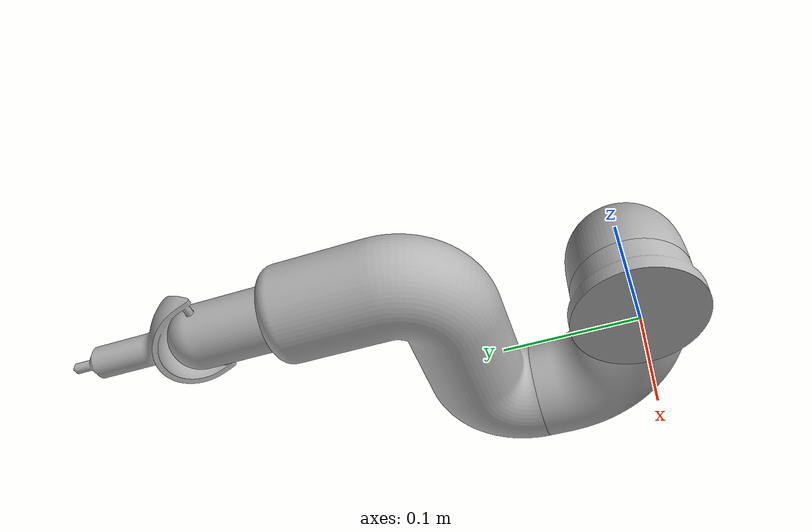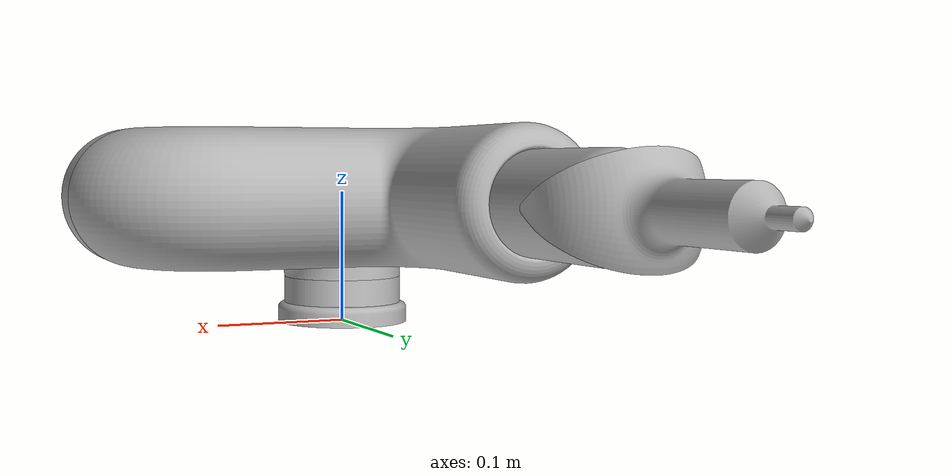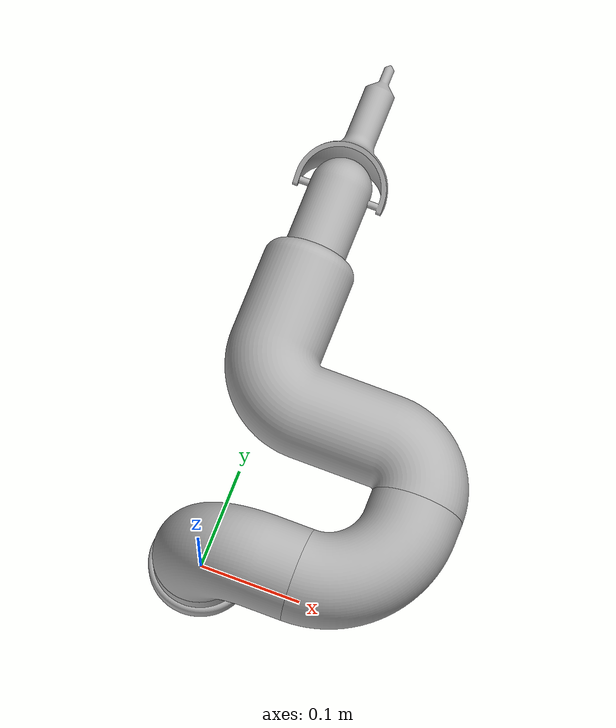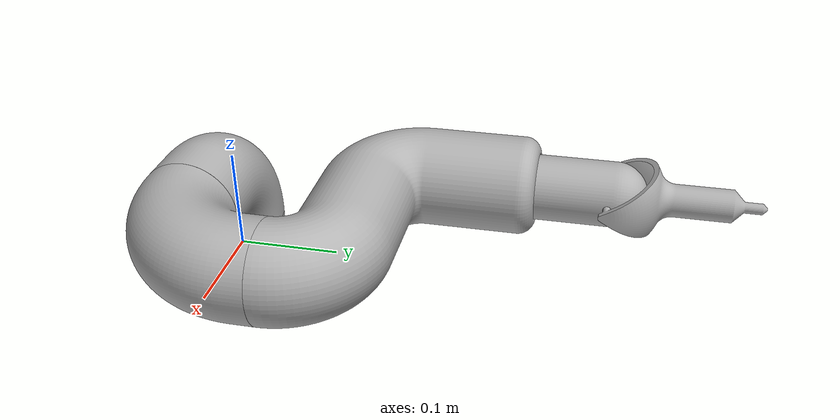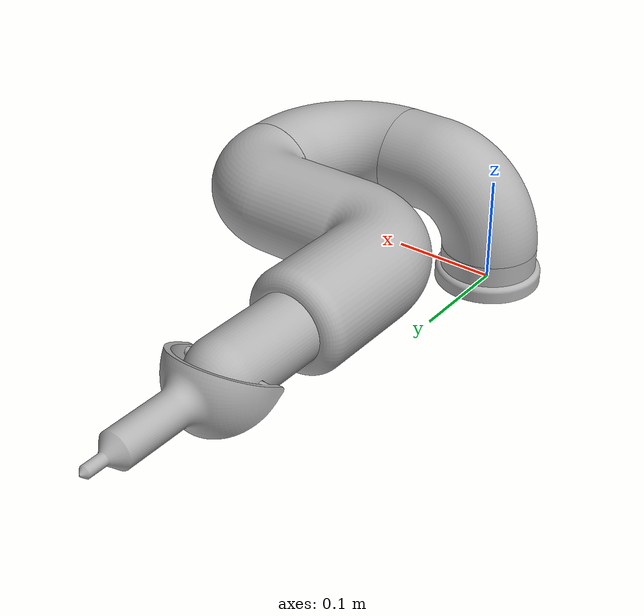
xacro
<?xml version="1.0" ?>
<robot name="Braco" xmlns:xacro="http://www.ros.org/wiki/xacro">

<xacro:include filename="$(find braco_description)/urdf/materials.xacro" />
<xacro:include filename="$(find braco_description)/urdf/Braço.trans" />
<xacro:include filename="$(find braco_description)/urdf/Braço.gazebo" />

<link name="world"/>

<joint name="world_to_base" type="fixed">
  <origin xyz="0 0 0" rpy="0 0 0"/>
  <parent link="world"/>
  <child link="base_link"/>
</joint>

<link name="base_link">
  <inertial>
    <origin xyz="0.0 9.341702626166154e-18 0.016604912357786914" rpy="0 0 0"/>
    <mass value="1.910661710885449"/>
    <inertia ixx="0.001266" iyy="0.001266" izz="0.002136" ixy="-0.0" iyz="0.0" ixz="0.0"/>
  </inertial>
  <visual>
    <origin xyz="0 0 0" rpy="0 0 0"/>
    <geometry>
      <mesh filename="file://$(find braco_description)/meshes/base_link.stl" scale="0.001 0.001 0.001"/>
    </geometry>
    <material name="silver"/>
  </visual>
  <collision>
    <origin xyz="0 0 0" rpy="0 0 0"/>
    <geometry>
      <mesh filename="file://$(find braco_description)/meshes/base_link.stl" scale="0.001 0.001 0.001"/>
    </geometry>
  </collision>
</link>

<link name="rot1_1">
  <inertial>
    <origin xyz="0.03495844573623028 5.213774500108194e-18 0.05110255285233073" rpy="0 0 0"/>
    <mass value="6.846799193913478"/>
    <inertia ixx="0.008499" iyy="0.014211" izz="0.012644" ixy="0.0" iyz="0.0" ixz="-0.003177"/>
  </inertial>
  <visual>
    <origin xyz="-0.0 -0.0 -0.035" rpy="0 0 0"/>
    <geometry>
      <mesh filename="file://$(find braco_description)/meshes/rot1_1.stl" scale="0.001 0.001 0.001"/>
    </geometry>
    <material name="silver"/>
  </visual>
  <collision>
    <origin xyz="-0.0 -0.0 -0.035" rpy="0 0 0"/>
    <geometry>
      <mesh filename="file://$(find braco_description)/meshes/rot1_1.stl" scale="0.001 0.001 0.001"/>
    </geometry>
  </collision>
</link>

<link name="rot2_1">
  <inertial>
    <origin xyz="0.058396495772356144 0.03396073478050104 9.71445146547012e-17" rpy="0 0 0"/>
    <mass value="7.274378802825201"/>
    <inertia ixx="0.013244" iyy="0.010621" izz="0.0165" ixy="-0.004538" iyz="-0.0" ixz="-0.0"/>
  </inertial>
  <visual>
    <origin xyz="-0.1 -0.0 -0.1" rpy="0 0 0"/>
    <geometry>
      <mesh filename="file://$(find braco_description)/meshes/rot2_1.stl" scale="0.001 0.001 0.001"/>
    </geometry>
    <material name="silver"/>
  </visual>
  <collision>
    <origin xyz="-0.1 -0.0 -0.1" rpy="0 0 0"/>
    <geometry>
      <mesh filename="file://$(find braco_description)/meshes/rot2_1.stl" scale="0.001 0.001 0.001"/>
    </geometry>
  </collision>
</link>

<link name="rot3_1">
  <inertial>
    <origin xyz="-0.10657961060810778 0.06809817377105873 1.3877787807814457e-16" rpy="0 0 0"/>
    <mass value="14.513248405934725"/>
    <inertia ixx="0.03844" iyy="0.082008" izz="0.104578" ixy="0.027942" iyz="0.0" ixz="0.0"/>
  </inertial>
  <visual>
    <origin xyz="-0.18 -0.1 -0.1" rpy="0 0 0"/>
    <geometry>
      <mesh filename="file://$(find braco_description)/meshes/rot3_1.stl" scale="0.001 0.001 0.001"/>
    </geometry>
    <material name="silver"/>
  </visual>
  <collision>
    <origin xyz="-0.18 -0.1 -0.1" rpy="0 0 0"/>
    <geometry>
      <mesh filename="file://$(find braco_description)/meshes/rot3_1.stl" scale="0.001 0.001 0.001"/>
    </geometry>
  </collision>
</link>

<link name="prism1_1">
  <inertial>
    <origin xyz="3.460374717706296e-15 0.09473819302531211 -3.734064336902154e-08" rpy="0 0 0"/>
    <mass value="4.193505859169914"/>
    <inertia ixx="0.013603" iyy="0.001851" izz="0.013596" ixy="0.0" iyz="0.0" ixz="-0.0"/>
  </inertial>
  <visual>
    <origin xyz="-0.0 -0.2 -0.1" rpy="0 0 0"/>
    <geometry>
      <mesh filename="file://$(find braco_description)/meshes/prism1_1.stl" scale="0.001 0.001 0.001"/>
    </geometry>
    <material name="silver"/>
  </visual>
  <collision>
    <origin xyz="-0.0 -0.2 -0.1" rpy="0 0 0"/>
    <geometry>
      <mesh filename="file://$(find braco_description)/meshes/prism1_1.stl" scale="0.001 0.001 0.001"/>
    </geometry>
  </collision>
</link>

<link name="rot4_1">
  <inertial>
    <origin xyz="3.7807344132643824e-08 0.06101258873148452 8.144494703654637e-09" rpy="0 0 0"/>
    <mass value="0.6545383836152304"/>
    <inertia ixx="0.000733" iyy="0.000283" izz="0.00088" ixy="-0.0" iyz="-0.0" ixz="0.0"/>
  </inertial>
  <visual>
    <origin xyz="-0.0 -0.365 -0.1" rpy="0 0 0"/>
    <geometry>
      <mesh filename="file://$(find braco_description)/meshes/rot4_1.stl" scale="0.001 0.001 0.001"/>
    </geometry>
    <material name="silver"/>
  </visual>
  <collision>
    <origin xyz="-0.0 -0.365 -0.1" rpy="0 0 0"/>
    <geometry>
      <mesh filename="file://$(find braco_description)/meshes/rot4_1.stl" scale="0.001 0.001 0.001"/>
    </geometry>
  </collision>
</link>

<joint name="base_rot1" type="revolute">
  <origin xyz="0.0 0.0 0.035" rpy="0 0 0"/>
  <parent link="base_link"/>
  <child link="rot1_1"/>
  <axis xyz="0.0 0.0 1.0"/>
  <limit upper="6.283185" lower="0.0" effort="100" velocity="100"/>
</joint>

<joint name="rot1_rot2" type="revolute">
  <origin xyz="0.1 0.0 0.065" rpy="0 0 0"/>
  <parent link="rot1_1"/>
  <child link="rot2_1"/>
  <axis xyz="1.0 0.0 0.0"/>
  <limit upper="6.283185" lower="0.0" effort="100" velocity="100"/>
</joint>

<joint name="rot2_rot3" type="revolute">
  <origin xyz="0.08 0.1 0.0" rpy="0 0 0"/>
  <parent link="rot2_1"/>
  <child link="rot3_1"/>
  <axis xyz="0.0 1.0 0.0"/>
  <limit upper="6.283185" lower="0.0" effort="100" velocity="100"/>
</joint>

<joint name="rot3_prism1" type="prismatic">
  <origin xyz="-0.18 0.1 0.0" rpy="0 0 0"/>
  <parent link="rot3_1"/>
  <child link="prism1_1"/>
  <axis xyz="0.0 1.0 0.0"/>
  <limit upper="0.1" lower="0.0" effort="100" velocity="100"/>
</joint>

<joint name="prism1_rot4" type="revolute">
  <origin xyz="0.0 0.165 0.0" rpy="0 0 0"/>
  <parent link="prism1_1"/>
  <child link="rot4_1"/>
  <axis xyz="-1.0 0.0 0.0"/>
  <limit upper="1.047198" lower="-1.047198" effort="100" velocity="100"/>
</joint>

<ros2_control name="braco_system" type="system">
  <hardware>
    <plugin>gz_ros2_control/GazeboSimSystem</plugin>
  </hardware>
  <joint name="base_rot1">
    <command_interface name="effort"/>
    <state_interface name="position"/>
    <state_interface name="velocity"/>
  </joint>
  <joint name="rot1_rot2">
    <command_interface name="effort"/>
    <state_interface name="position"/>
    <state_interface name="velocity"/>
  </joint>
  <joint name="rot2_rot3">
    <command_interface name="effort"/>
    <state_interface name="position"/>
    <state_interface name="velocity"/>
  </joint>
  <joint name="rot3_prism1">
    <command_interface name="effort"/>
    <state_interface name="position"/>
    <state_interface name="velocity"/>
  </joint>
  <joint name="prism1_rot4">
    <command_interface name="effort"/>
    <state_interface name="position"/>
    <state_interface name="velocity"/>
  </joint>
</ros2_control>

</robot>

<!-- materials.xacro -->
<robot name="Braço" xmlns:xacro="http://www.ros.org/wiki/xacro" >

<material name="silver">
  <color rgba="0.700 0.700 0.700 1.000"/>
</material>

</robot>

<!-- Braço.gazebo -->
<robot name="Braço" xmlns:xacro="http://www.ros.org/wiki/xacro" >

<xacro:property name="body_color" value="Gazebo/Silver" />

<gazebo>
  <plugin filename="gz_ros2_control-system" name="gz_ros2_control::GazeboSimROS2ControlPlugin">
    <parameters>$(find braco_description)/config/controllers.yaml</parameters>
  </plugin>
</gazebo>
<gazebo reference="base_link">
  <material>${body_color}</material>
  <mu1>0.2</mu1>
  <mu2>0.2</mu2>
  <selfCollide>true</selfCollide>
  <gravity>true</gravity>
</gazebo>

<gazebo reference="rot1_1">
  <material>${body_color}</material>
  <mu1>0.2</mu1>
  <mu2>0.2</mu2>
  <selfCollide>true</selfCollide>
</gazebo>

<gazebo reference="rot2_1">
  <material>${body_color}</material>
  <mu1>0.2</mu1>
  <mu2>0.2</mu2>
  <selfCollide>true</selfCollide>
</gazebo>

<gazebo reference="rot3_1">
  <material>${body_color}</material>
  <mu1>0.2</mu1>
  <mu2>0.2</mu2>
  <selfCollide>true</selfCollide>
</gazebo>

<gazebo reference="prism1_1">
  <material>${body_color}</material>
  <mu1>0.2</mu1>
  <mu2>0.2</mu2>
  <selfCollide>true</selfCollide>
</gazebo>

<gazebo reference="rot4_1">
  <material>${body_color}</material>
  <mu1>0.2</mu1>
  <mu2>0.2</mu2>
  <selfCollide>true</selfCollide>
</gazebo>

</robot>
